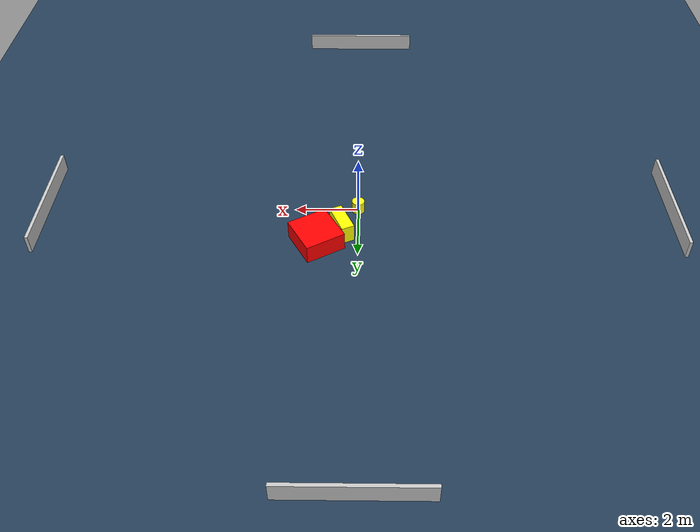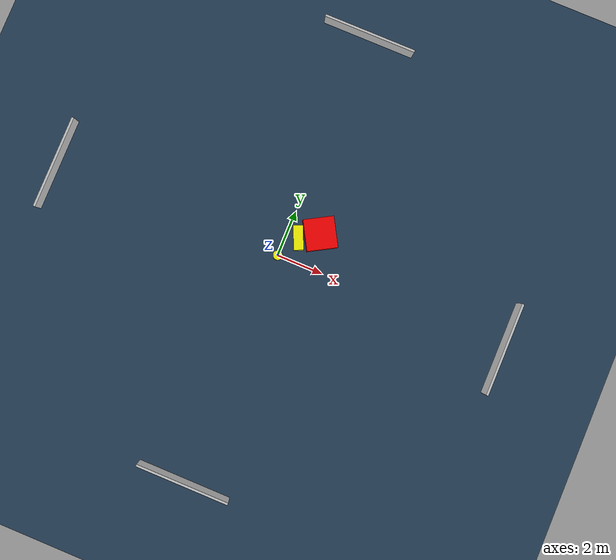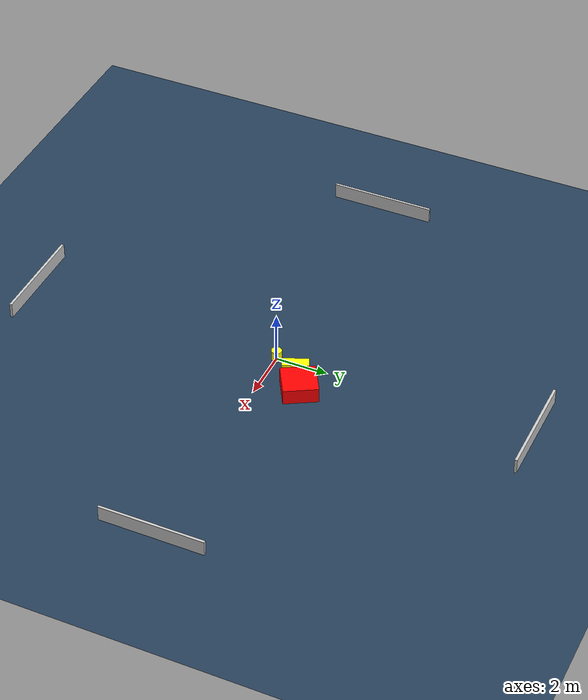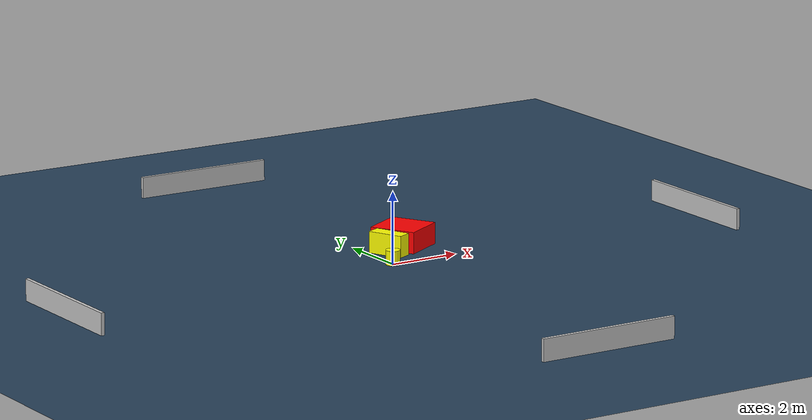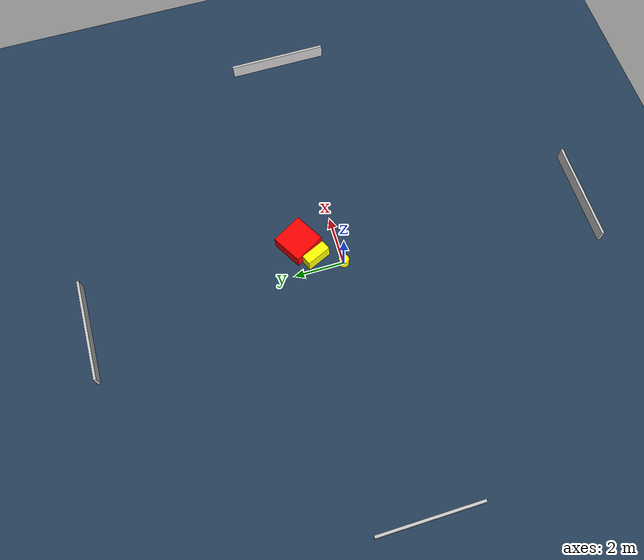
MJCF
<?xml version="1.0" ?>
<mujoco model="generated_environment">
  <option timestep="0.01" integrator="RK4" cone="elliptic"/>
  <default>
    <geom density="1"/>
  </default>
  <asset>
    <texture builtin="gradient" height="3072" name="skybox" rgb1="0.3 0.5 0.7" rgb2="0 0 0" type="skybox" width="512"/>
    <texture builtin="checker" height="300" name="groundplane" rgb1="0.2 0.3 0.4" rgb2="0.1 0.2 0.3" type="2d" width="300"/>
    <material name="groundplane" reflectance="0.2" texrepeat="5 5" texture="groundplane"/>
  </asset>
  <worldbody>
    <light dir="0 0 -1" directional="true" pos="0 0 1.5"/>
    <geom condim="3" friction="0.5 0.005 0.001" material="groundplane" name="floor" pos="0 0 0" size="0 0 0.05" type="plane"/>
    <body name="walls">
      <geom name="wall_1" condim="4" pos="-10.0 0.0 0.3" rgba="0.800000011920929 0.800000011920929 0.800000011920929 1.0" size="0.05 2.0 0.3" type="box"/>
      <geom name="wall_2" condim="4" pos="10.0 0.0 0.3" rgba="0.800000011920929 0.800000011920929 0.800000011920929 1.0" size="0.05 2.0 0.3" type="box"/>
      <geom name="wall_3" condim="4" pos="0.0 -10.0 0.3" rgba="0.800000011920929 0.800000011920929 0.800000011920929 1.0" size="2.0 0.05 0.3" type="box"/>
      <geom name="wall_4" condim="4" pos="0.0 10.0 0.3" rgba="0.800000011920929 0.800000011920929 0.800000011920929 1.0" size="2.0 0.05 0.3" type="box"/>
    </body>
    <body name="robot">
      <joint name="joint_x" type="slide" pos="0 0 0" axis="1 0 0"/>
      <joint name="joint_y" type="slide" pos="0 0 0" axis="0 1 0"/>
      <geom name="robot" type="cylinder" pos="0.0 0.0 0.2" size="0.2 0.2 0.0" mass="5.0" friction="1.0 0.005 0.0001" condim="4" rgba="1.0 1.0 0.0 1.0"/>
    </body>
    <body name="obstacle_1_movable">
      <geom name="obstacle_1_movable" condim="4" pos="0.5040743936324962 0.9831667974838364 0.3" euler="0 0 114.03142371690173" friction="0.0 0.005 0.001" rgba="1.0 1.0 0.0 1.0" size="0.5075079833223084 0.20372498900680308 0.3" type="box" mass="0.1"/>
      <joint type="free"/>
    </body>
    <body name="obstacle_2_static">
      <geom name="obstacle_2_static" condim="4" pos="1.2772689491727192 1.4840855814214007 0.3" euler="0 0 29.84404945070656" friction="0.0 0.005 0.001" rgba="1.0 0.0 0.0 1.0" size="0.6407768062254049 0.6549202596909084 0.3" type="box"/>
    </body>
  </worldbody>
  <actuator>
    <motor name="actuator_x" joint="joint_x" gear="1" ctrlrange="-1 1"/>
    <motor name="actuator_y" joint="joint_y" gear="1" ctrlrange="-1 1"/>
  </actuator>
</mujoco>
